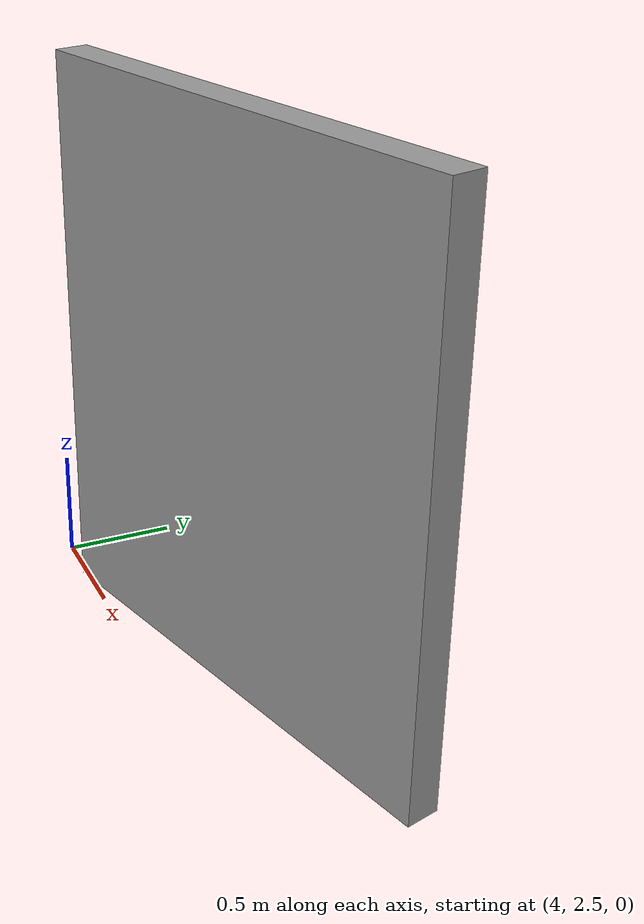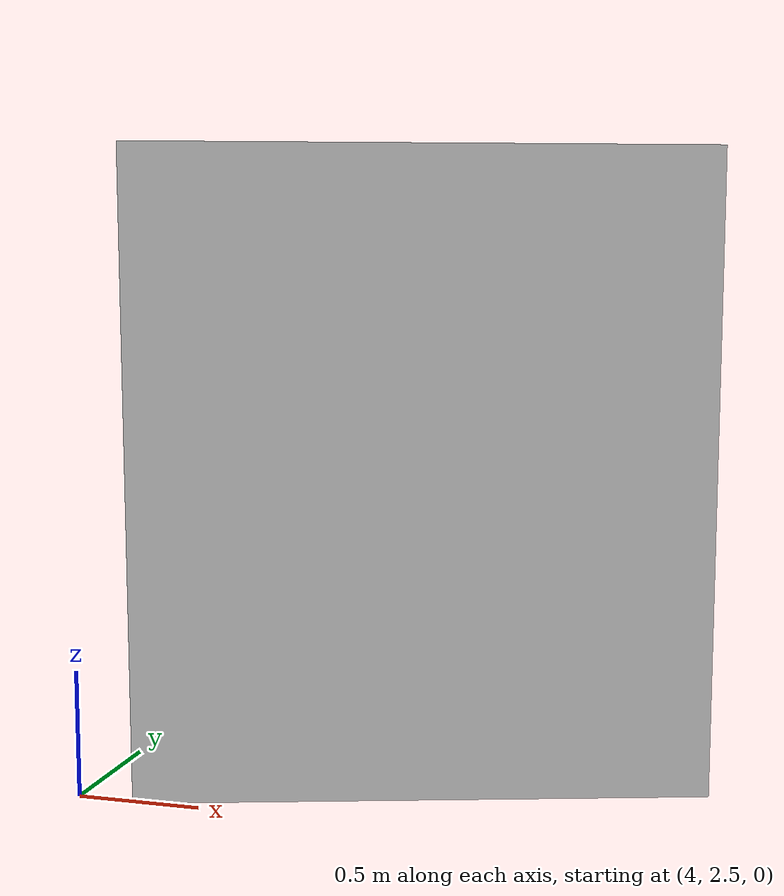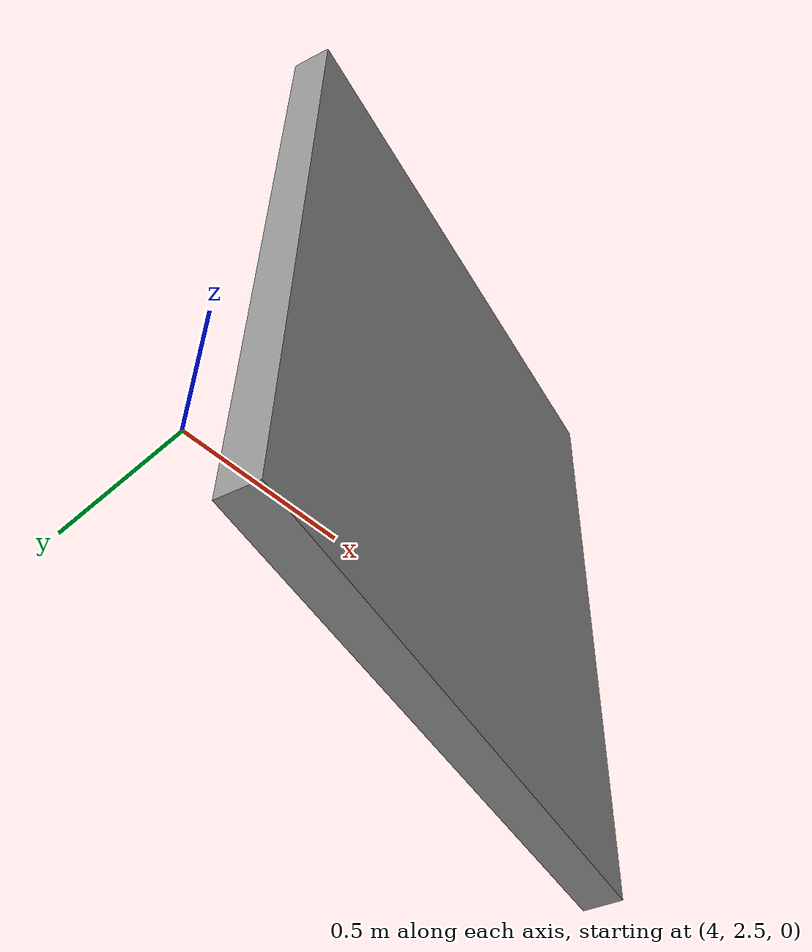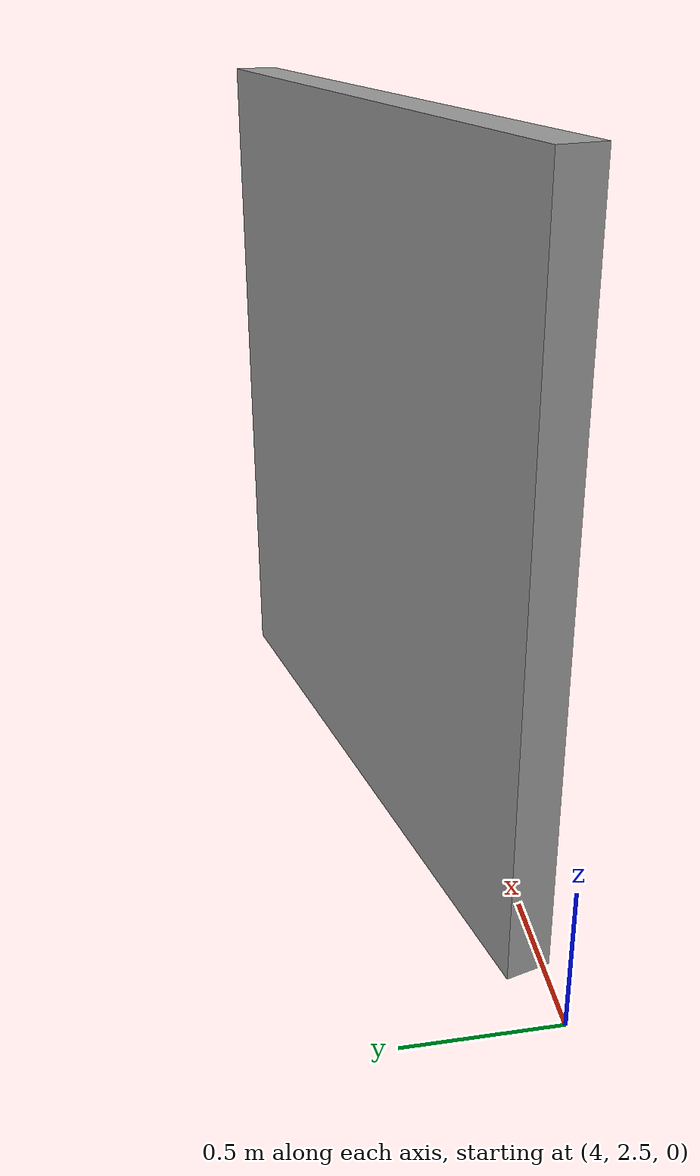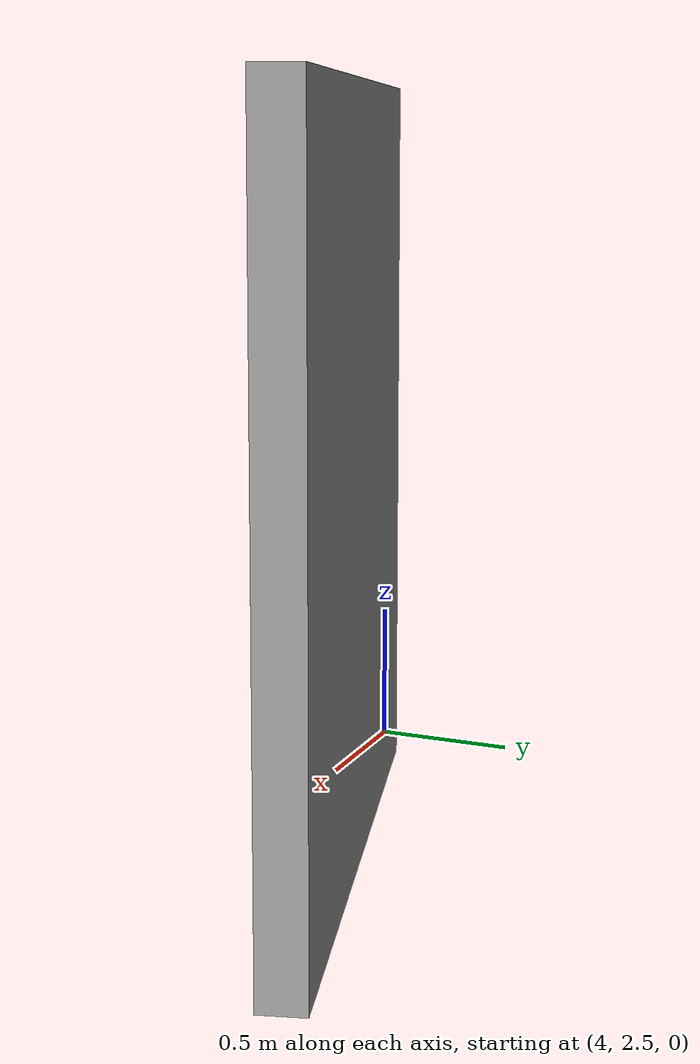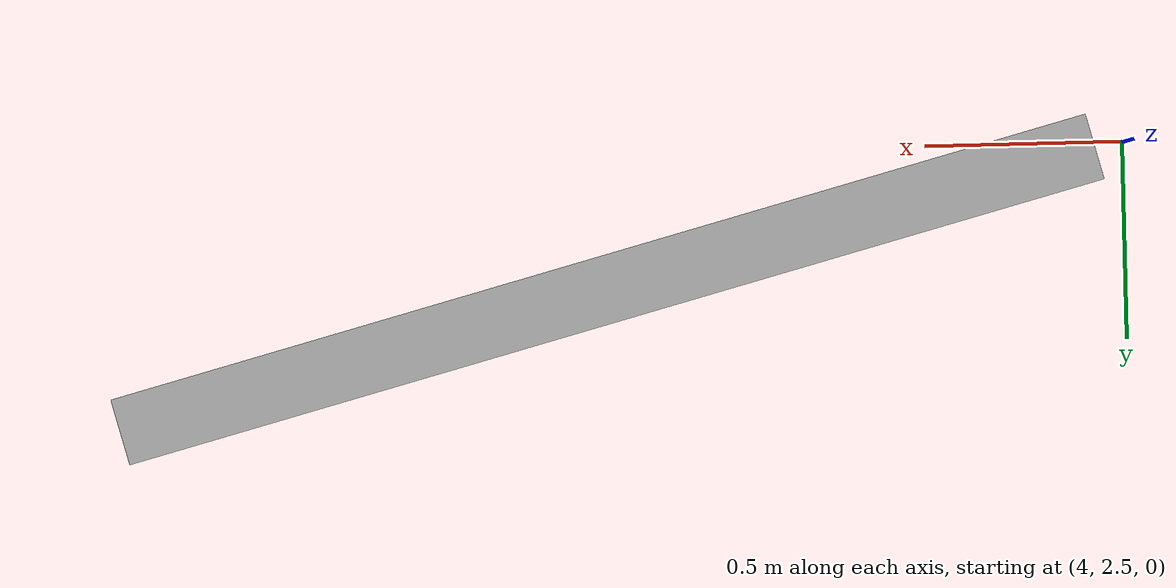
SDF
<?xml version='1.0'?>
<sdf version='1.7'>
  <model name='room'>
    <pose>3.20445 1.60354 0 0 -0 0</pose>
    <link name='Wall_6'>
      <collision name='Wall_6_Collision'>
        <geometry>
          <box>
            <size>2.25 0.15 2.5</size>
          </box>
        </geometry>
        <pose>0 0 1.25 0 -0 0</pose>
      </collision>
      <visual name='Wall_6_Visual'>
        <pose>0 0 1.25 0 -0 0</pose>
        <geometry>
          <box>
            <size>2.25 0.15 2.5</size>
          </box>
        </geometry>
        <material>
          <script>
            <uri>file://media/materials/scripts/gazebo.material</uri>
            <name>Gazebo/Grey</name>
          </script>
          <ambient>1 1 1 1</ambient>
        </material>
        <meta>
          <layer>0</layer>
        </meta>
      </visual>
      <pose>2.09837 1.23992 0 0 -0 0.261799</pose>
    </link>
    <static>1</static>
  </model>
</sdf>
